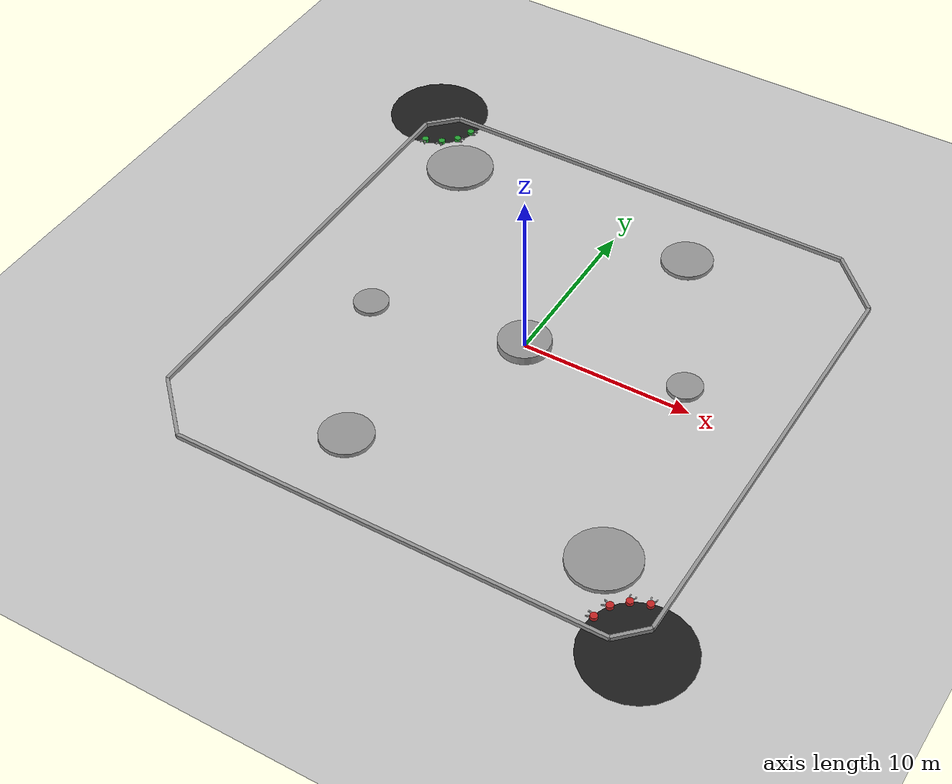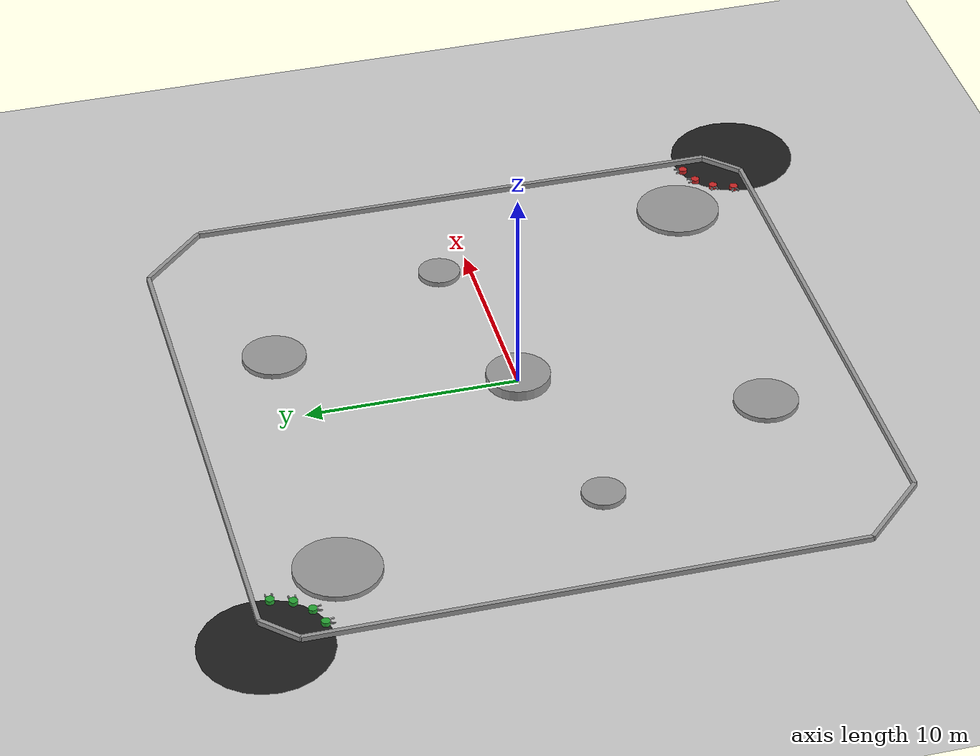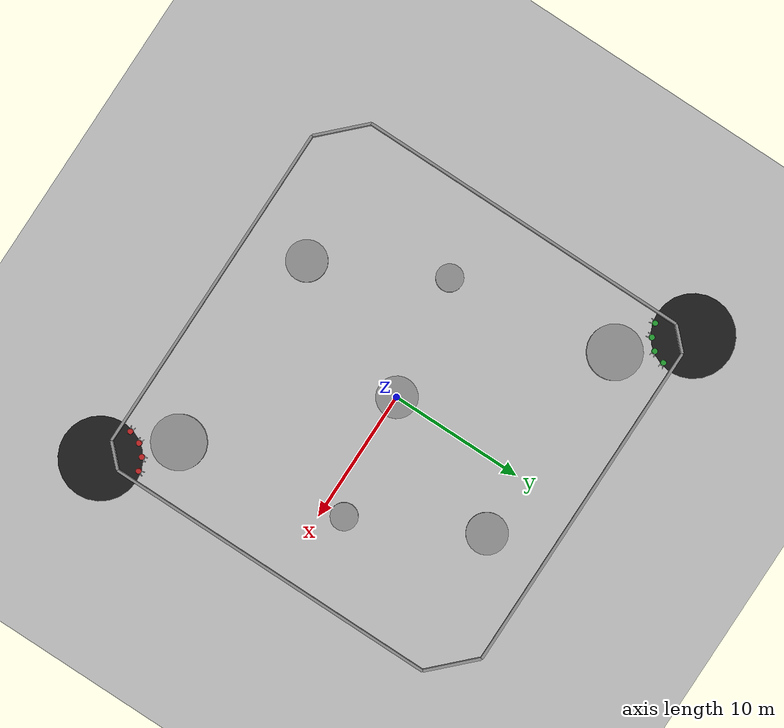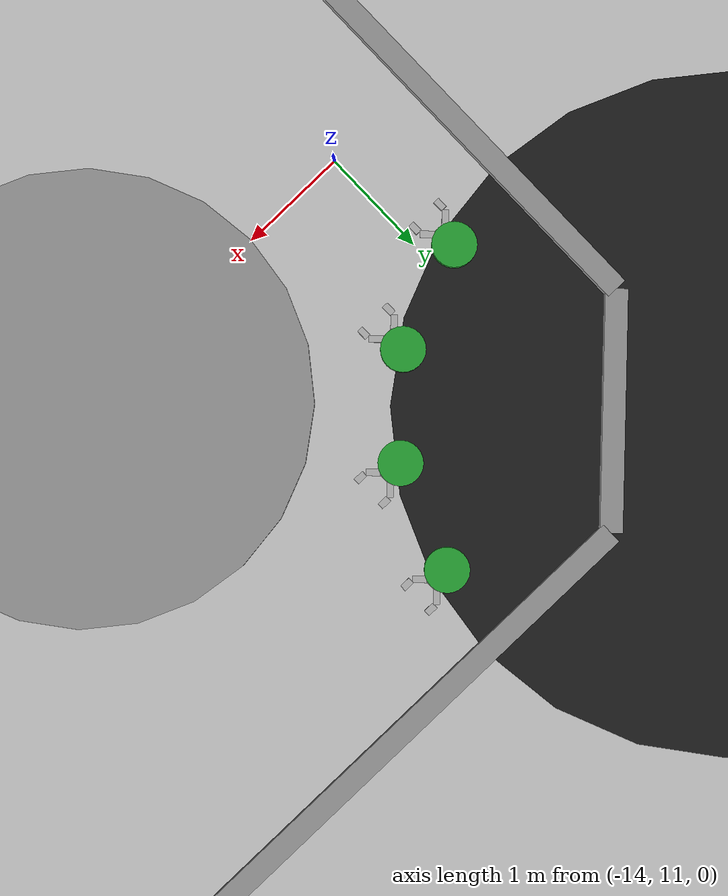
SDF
<?xml version="1.0"?>
<sdf version="1.4">
  <world name="default">
    <scene>
      <shadows>0</shadows>
      <grid>0</grid>
    </scene>
      <!-- World Camera -->
    <gui>
        <camera name='camera_view'>
        <pose>0 0 50 0 1.57079 1.57079</pose>
        </camera>
    </gui>

    <!-- Ground -->
    <include>
      <uri>model://ground_plane</uri>
    </include>

    <!-- Global light source -->
     <include>
      <uri>model://sun</uri>
    </include>

    <!-- Robots Team A-->
    <include>
      <pose>-14.25 12.25 0 0 0  -1.57079 </pose>
      <name>TeamA_Bug_01</name>
      <uri>model://SDIC_GreenBug</uri>
    </include>

    <include>
      <pose>-12.25 14.25 0 0 0 0</pose>
      <name>TeamA_Bug_02</name>
      <uri>model://SDIC_GreenBug</uri>
    </include>

    <include>
      <pose>-13.3 12.6 0 0 0 -1.57079</pose>
      <name>TeamA_Bug_03</name>
      <uri>model://SDIC_GreenBug</uri>
    </include>

    <include>
      <pose>-12.6 13.3 0 0 0 0</pose>
      <name>TeamA_Bug_04</name>
      <uri>model://SDIC_GreenBug</uri>
    </include>

    <!-- Robots Team B-->
    <include>
      <pose>14.25 -12.25 0 0 0  1.57079</pose>
      <name>TeamB_Bug_01</name>
      <uri>model://SDIC_RedBug</uri>
    </include>

    <include>
      <pose>12.25 -14.25 0 0 0 3.14159</pose>
      <name>TeamB_Bug_02</name>
      <uri>model://SDIC_RedBug</uri>
    </include>

    <include>
      <pose>13.3 -12.6 0 0 0 1.57079</pose>
      <name>TeamB_Bug_03</name>
      <uri>model://SDIC_RedBug</uri>
    </include>

    <include>
      <pose>12.6 -13.3 0 0 0 3.14159</pose>
      <name>TeamB_Bug_04</name>
      <uri>model://SDIC_RedBug</uri>
    </include>

    <!-- Wall -->
    <include>
        <uri>model://SDIC_WallHuge</uri>
    </include>

    <!-- Home_A -->
    <include>
      <pose>-15 15 0.001 0 0 0</pose>
      <name>Home_A</name>
      <uri>model://SDIC_Home</uri>
    </include>

  <!-- Home_B -->
    <include>
      <pose>15 -15 0.001 0 0 0</pose>
      <name>Home_B</name>
      <uri>model://SDIC_Home</uri>
    </include>

  </world>
</sdf>

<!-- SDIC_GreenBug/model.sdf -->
<sdf version='1.4'>
  <!-- Robot model -->
  <model name="SDIC_Bug">
    <!-- Body elements -->
    <link name='bug'>
      <pose>0 0 .1 0 0 0</pose>
      <inertial>
	<mass>5</mass>
	<inertia>
	  <ixx>1</ixx>
	  <ixy>0</ixy>
	  <ixz>0</ixz>
	  <iyy>1</iyy>
	  <iyz>0</iyz>
	  <izz>1</izz>
	</inertia>
      </inertial>
      <collision name='collision'>
	<geometry>
	  <cylinder>
	    <radius>.2</radius>
	    <length>.2</length>
	  </cylinder>
	</geometry>
	<surface>
	  <friction>
	    <ode>
	      <mu>0.1</mu>
	      <mu2>0</mu2>
	      <slip1>0.0</slip1>
	      <slip2>0.0</slip2>
	    </ode>
	  </friction>
	</surface>
      </collision>

      <visual name='visual'>
	<geometry>
	  <cylinder>
	    <radius>.2</radius>
	    <length>.2</length>
	  </cylinder>
	</geometry>
	<material>
	  <script>
	    <uri>file://media/materials/scripts/gazebo.material</uri>
	    <name>Gazebo/Green</name>
	  </script>
	</material>
      </visual>

      <!-- Sensors -->
      <!-- Proximity sensor -->
      <sensor name="laser" type="ray">
	<pose>0 0 0.075 0 0 0 </pose>
	<ray>
	<scan>
	  <horizontal>
	    <samples>32</samples>
	    <resolution>1</resolution>
	    <min_angle>-3</min_angle>
	    <max_angle>3</max_angle>
	  </horizontal>
	</scan>
	<range>
	  <min>0.201</min>
	  <max>2.0</max>
	  <resolution>0.01</resolution>
	</range>
	<noise>
	  <type>gaussian</type>
	  <mean>0.0</mean>
	  <stddev>0.02</stddev>
	</noise>
      </ray>
      <always_on>1</always_on>
      <update_rate>25</update_rate>
      <visualize>0</visualize>
      </sensor>

      <!-- Proximity sensor -->
      <sensor name="laser_target" type="ray">
	<pose>0 0 0.25 0 0 0 </pose>
	<ray>
	<scan>
	  <horizontal>
	    <samples>32</samples>
	    <resolution>1</resolution>
	    <min_angle>-3</min_angle>
	    <max_angle>3</max_angle>
	  </horizontal>
	</scan>
	<range>
	  <min>0.26</min>
	  <max>2.5</max>
	  <resolution>0.01</resolution>
	</range>
	<noise>
	  <type>gaussian</type>
	  <mean>0.0</mean>
	  <stddev>0.02</stddev>
	</noise>
      </ray>
      <always_on>1</always_on>
      <update_rate>25</update_rate>
      <visualize>0</visualize>
      </sensor>
      <!-- Proximity sensor Gripper -->
      <sensor name="laser_gripper" type="ray">
	<pose>0.19 0 -0.02 0 0 0 </pose>
	<ray>
	<scan>
	  <horizontal>
	    <samples>16</samples>
	    <resolution>1</resolution>
	    <min_angle>-1</min_angle>
	    <max_angle>1</max_angle>
	  </horizontal>
	</scan>
	<range>
	  <min>0.0155</min>
	  <max>0.2</max>
	  <resolution>0.01</resolution>
	</range>
	<noise>
	  <type>gaussian</type>
	  <mean>0.0</mean>
	  <stddev>0.005</stddev>
	</noise>
	</ray>
	<always_on>0</always_on>
	<update_rate>25</update_rate>
	<visualize>0</visualize>
      </sensor>

    <sensor name="camera" type="camera">
      <pose>0.125 0 0.25 0 0.57 0</pose>
      <camera>
	<horizontal_fov>1.0047</horizontal_fov>
          <image>
            <width>32</width>
            <height>28</height>
          </image>
          <clip>
            <near>0.15</near>
            <far>20</far>
          </clip>
	  <noise>
            <type>gaussian</type>
            <mean>0.0</mean>
            <stddev>0.001</stddev>
          </noise>
   </camera>
      <always_on>1</always_on>
      <update_rate>30</update_rate>
      <visualize>0</visualize>
    </sensor>
    </link>
`
    <include>
      <uri>model://SDIC_Gripper</uri>
      <pose>0.17 0 .08 0 0 0</pose>
    </include>

    <joint name="arm_gripper_joint" type="revolute">
      <parent>bug</parent>
      <child>SDIC_Gripper::palm</child>
      <axis>
	<limit>
	  <lower>0</lower>
	  <upper>0</upper>
	</limit>
	<xyz>0 0 1</xyz>
      </axis>
    </joint>

    <plugin name="model_push" filename="libvel_plugin.so" />
</model>
</sdf>

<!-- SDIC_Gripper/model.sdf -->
<sdf version="1.4">
  <model name="SDIC_Gripper">
    <link name="palm">
      <pose>0.0 0.0 0.05 0 0 0</pose>
      <inertial>
        <mass>0.002</mass>
      </inertial>
      <collision name="collision">
        <geometry>
          <box>
            <size>0.06 0.1 0.06</size>
          </box>
        </geometry>
        <surface>
	  <friction>
            <ode>
              <mu>0.1</mu>
              <mu2>0</mu2>
            </ode>
          </friction>
          <contact>
            <ode>
              <max_vel>0.0</max_vel>
            </ode>
          </contact>
        </surface>
      </collision>
      <visual name="visual">
        <geometry>
          <box>
            <size>0.06 0.1 0.06</size>
          </box>
        </geometry>
      </visual>
    </link>
    <link name="left_finger">
      <pose>0.05 0.1 0.05 0 0 -0.78539</pose>
      <inertial>
        <mass>0.001</mass>
	<inertia>
	  <ixx>0.001</ixx>
	  <ixy>0</ixy>
	  <ixz>0</ixz>
	  <iyy>0.001</iyy>
	  <iyz>0</iyz>
	  <izz>0.001</izz>
	</inertia>
      </inertial>
      <collision name="collision">
        <geometry>
          <box>
            <size>0.06 0.15 0.06</size>
          </box>
        </geometry>
        <surface>
          <friction>
            <ode>
              <mu>0.1</mu>
              <mu2>0</mu2>
            </ode>
          </friction>
          <contact>
            <ode>
              <max_vel>0.0</max_vel>
            </ode>
          </contact>
        </surface>
      </collision>
      <visual name="visual">
        <geometry>
          <box>
            <size>0.06 0.15 0.06</size>
          </box>
        </geometry>
      </visual>
    </link>
    <link name="left_finger_tip">
      <pose>0.168 0.15 0.05 0 0 1.5707</pose>
      <inertial>
        <mass>0.001</mass>
	<inertia>
	  <ixx>0.001</ixx>
	  <ixy>0</ixy>
	  <ixz>0</ixz>
	  <iyy>0.001</iyy>
	  <iyz>0</iyz>
	  <izz>0.001</izz>
	</inertia>
      </inertial>
      <collision name="collision">
        <geometry>
          <box>
            <size>0.06 0.1 0.06</size>
          </box>
        </geometry>
        <surface>
          <friction>
            <ode>
              <mu>0.1</mu>
              <mu2>0</mu2>
            </ode>
          </friction>
          <contact>
            <ode>
              <max_vel>0.0</max_vel>
            </ode>
          </contact>
        </surface>
      </collision>
      <visual name="visual">
        <geometry>
          <box>
            <size>0.06 0.1 0.06</size>
          </box>
        </geometry>
      </visual>
    </link>
    <link name="right_finger">
      <pose>0.05 -0.1 0.05 0 0 .78539</pose>
      <inertial>
        <mass>0.001</mass>
	<inertia>
	  <ixx>0.001</ixx>
	  <ixy>0</ixy>
	  <ixz>0</ixz>
	  <iyy>0.001</iyy>
	  <iyz>0</iyz>
	  <izz>0.001</izz>
	</inertia>
      </inertial>
      <collision name="collision">
        <geometry>
          <box>
            <size>0.06 0.15 0.06</size>
          </box>
        </geometry>
        <surface>
          <friction>
            <ode>
              <mu>0.1</mu>
              <mu2>0</mu2>
            </ode>
          </friction>
          <contact>
            <ode>
              <max_vel>0.0</max_vel>
            </ode>
          </contact>
        </surface>
      </collision>
      <visual name="visual">
        <geometry>
          <box>
            <size>0.06 0.15 0.06</size>
          </box>
        </geometry>
      </visual>
    </link>
    <link name="right_finger_tip">
      <pose>0.168 -0.15 0.05 0 0 1.5707</pose>
      <inertial>
        <mass>0.001</mass>
	<inertia>
	  <ixx>0.001</ixx>
	  <ixy>0</ixy>
	  <ixz>0</ixz>
	  <iyy>0.001</iyy>
	  <iyz>0</iyz>
	  <izz>0.001</izz>
	</inertia>
      </inertial>
      <collision name="collision">
        <geometry>
          <box>
            <size>0.06 0.1 0.06</size>
          </box>
        </geometry>
        <surface>
          <friction>
            <ode>
              <mu>0.1</mu>
              <mu2>0</mu2>
            </ode>
          </friction>
          <contact>
            <ode>
              <max_vel>0.0</max_vel>
            </ode>
          </contact>
        </surface>
      </collision>
      <visual name="visual">
        <geometry>
          <box>
            <size>0.06 0.1 0.06</size>
          </box>
        </geometry>
      </visual>
    </link>

    <joint name="left_finger" type="revolute">
      <pose>0 -0.075 0 0 0 0</pose>
      <child>left_finger</child>
      <parent>palm</parent>
      <axis>
        <limit><lower>-0.2</lower><upper>0.4</upper></limit>
        <xyz>0 0 -1</xyz>
      </axis>
    </joint>
    <joint name="left_finger_tip" type="revolute">
      <pose>0 0.05 0 0 0 0</pose>
      <child>left_finger_tip</child>
      <parent>left_finger</parent>
      <axis>
        <limit><lower>0</lower><upper>0.4</upper></limit>
        <xyz>0 0 -1</xyz>
      </axis>
    </joint>
    <joint name="right_finger" type="revolute">
      <pose>0 0.075 0 0 0 0</pose>
      <child>right_finger</child>
      <parent>palm</parent>
      <axis>
        <limit><lower>-0.2</lower><upper>0.4</upper></limit>
        <xyz>0 0 1</xyz>
      </axis>
    </joint>
    <joint name="right_finger_tip" type="revolute">
      <pose>0 0.05 0 0 0 0</pose>
      <child>right_finger_tip</child>
      <parent>right_finger</parent>
      <axis>
        <limit><lower>0</lower><upper>0.4</upper></limit>
        <xyz>0 0 1</xyz>
      </axis>
    </joint>

  </model>
</sdf>

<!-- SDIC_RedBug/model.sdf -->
<sdf version='1.4'>
  <!-- Robot model -->
  <model name="SDIC_Bug">
    <!-- Body elements -->
    <link name='bug'>
      <pose>0 0 .1 0 0 0</pose>
      <inertial>
	<mass>5</mass>
	<inertia>
	  <ixx>1</ixx>
	  <ixy>0</ixy>
	  <ixz>0</ixz>
	  <iyy>1</iyy>
	  <iyz>0</iyz>
	  <izz>1</izz>
	</inertia>
      </inertial>
      <collision name='collision'>
	<geometry>
	  <cylinder>
	    <radius>.2</radius>
	    <length>.2</length>
	  </cylinder>
	</geometry>
	<surface>
	  <friction>
	    <ode>
	      <mu>0.1</mu>
	      <mu2>0</mu2>
	      <slip1>0.0</slip1>
	      <slip2>0.0</slip2>
	    </ode>
	  </friction>
	</surface>
      </collision>

      <visual name='visual'>
	<geometry>
	  <cylinder>
	    <radius>.2</radius>
	    <length>.2</length>
	  </cylinder>
	</geometry>
	<material>
	  <script>
	    <uri>file://media/materials/scripts/gazebo.material</uri>
	    <name>Gazebo/Red</name>
	  </script>
	</material>
      </visual>

      <!-- Sensors -->
      <!-- Proximity sensor -->
      <sensor name="laser" type="ray">
	<pose>0 0 0.075 0 0 0 </pose>
	<ray>
	<scan>
	  <horizontal>
	    <samples>32</samples>
	    <resolution>1</resolution>
	    <min_angle>-3</min_angle>
	    <max_angle>3</max_angle>
	  </horizontal>
	</scan>
	<range>
	  <min>0.201</min>
	  <max>2.0</max>
	  <resolution>0.01</resolution>
	</range>
	<noise>
	  <type>gaussian</type>
	  <mean>0.0</mean>
	  <stddev>0.02</stddev>
	</noise>
      </ray>
      <always_on>1</always_on>
      <update_rate>25</update_rate>
      <visualize>0</visualize>
      </sensor>

      <!-- Proximity sensor -->
      <sensor name="laser_target" type="ray">
	<pose>0 0 0.25 0 0 0 </pose>
	<ray>
	<scan>
	  <horizontal>
	    <samples>32</samples>
	    <resolution>1</resolution>
	    <min_angle>-3</min_angle>
	    <max_angle>3</max_angle>
	  </horizontal>
	</scan>
	<range>
	  <min>0.26</min>
	  <max>2.5</max>
	  <resolution>0.01</resolution>
	</range>
	<noise>
	  <type>gaussian</type>
	  <mean>0.0</mean>
	  <stddev>0.02</stddev>
	</noise>
      </ray>
      <always_on>1</always_on>
      <update_rate>25</update_rate>
      <visualize>0</visualize>
      </sensor>
      <!-- Proximity sensor Gripper -->
      <sensor name="laser_gripper" type="ray">
	<pose>0.19 0 -0.02 0 0 0 </pose>
	<ray>
	<scan>
	  <horizontal>
	    <samples>16</samples>
	    <resolution>1</resolution>
	    <min_angle>-1</min_angle>
	    <max_angle>1</max_angle>
	  </horizontal>
	</scan>
	<range>
	  <min>0.0155</min>
	  <max>0.2</max>
	  <resolution>0.01</resolution>
	</range>
	<noise>
	  <type>gaussian</type>
	  <mean>0.0</mean>
	  <stddev>0.005</stddev>
	</noise>
	</ray>
	<always_on>0</always_on>
	<update_rate>25</update_rate>
	<visualize>0</visualize>
      </sensor>

    <sensor name="camera" type="camera">
      <pose>0.125 0 0.25 0 0.57 0</pose>
      <camera>
	<horizontal_fov>1.0047</horizontal_fov>
          <image>
            <width>32</width>
            <height>28</height>
          </image>
          <clip>
            <near>0.15</near>
            <far>20</far>
          </clip>
	  <noise>
            <type>gaussian</type>
            <mean>0.0</mean>
            <stddev>0.001</stddev>
          </noise>
   </camera>
      <always_on>1</always_on>
      <update_rate>30</update_rate>
      <visualize>0</visualize>
    </sensor>
    </link>
`
    <include>
      <uri>model://SDIC_Gripper</uri>
      <pose>0.17 0 .08 0 0 0</pose>
    </include>

    <joint name="arm_gripper_joint" type="revolute">
      <parent>bug</parent>
      <child>SDIC_Gripper::palm</child>
      <axis>
	<limit>
	  <lower>0</lower>
	  <upper>0</upper>
	</limit>
	<xyz>0 0 1</xyz>
      </axis>
    </joint>

    <plugin name="model_push" filename="libvel_plugin.so" />
</model>
</sdf>

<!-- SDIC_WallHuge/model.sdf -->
<sdf version='1.4'>
  <model name='Wall'>
    <link name='Wall_1'>
      <collision name='Wall_1_Collision'>
        <geometry>
          <box>
            <size>25.5 0.2 0.25</size>
          </box>
        </geometry>
        <pose>0 0 0.125 0 -0 0</pose>
      </collision>
      <visual name='Wall_1_Visual'>
        <pose>0 0 0.125 0 -0 0</pose>
        <geometry>
          <box>
            <size>25.5 0.2 0.25</size>
          </box>
        </geometry>
        <material>
          <script>
            <uri>file://media/materials/scripts/gazebo.material</uri>
            <name>Gazebo/Grey</name>
          </script>
        </material>
      </visual>
      <velocity_decay>
        <linear>0</linear>
        <angular>0</angular>
      </velocity_decay>
      <pose>-15 0.75 0 0 0 -1.5708</pose>
    </link>

    <link name='Wall_2'>
      <collision name='Wall_2_Collision'>
        <geometry>
          <box>
            <size>25.5 0.2 0.25</size>
          </box>
        </geometry>
        <pose>0 0 0.125 0 -0 0</pose>
      </collision>
      <visual name='Wall_2_Visual'>
        <pose>0 0 0.125 0 -0 0</pose>
        <geometry>
          <box>
            <size>25.5 0.2 0.25</size>
          </box>
         </geometry>
        <material>
          <script>
            <uri>file://media/materials/scripts/gazebo.material</uri>
            <name>Gazebo/Grey</name>
          </script>
        </material>
      </visual>
      <velocity_decay>
        <linear>0</linear>
        <angular>0</angular>
      </velocity_decay>
      <pose>0.75 -15 0 0 0 0</pose>
    </link>

 <link name='Wall_3'>
      <collision name='Wall_3_Collision'>
        <geometry>
          <box>
            <size>25.5 0.2 0.25</size>
          </box>
        </geometry>
        <pose>0 0 0.125 0 -0 0</pose>
      </collision>
      <visual name='Wall_3_Visual'>
        <pose>0 0 0.125 0 -0 0</pose>
        <geometry>
          <box>
            <size>25.5 0.2 0.25</size>
          </box>
        </geometry>
        <material>
          <script>
            <uri>file://media/materials/scripts/gazebo.material</uri>
            <name>Gazebo/Grey</name>
          </script>
        </material>
      </visual>
      <velocity_decay>
        <linear>0</linear>
        <angular>0</angular>
      </velocity_decay>
      <pose>15 -0.75 0 0 0 -1.5708</pose>
    </link>

    <link name='Wall_4'>
      <collision name='Wall_4_Collision'>
        <geometry>
          <box>
            <size>25.5 0.2 0.25</size>
          </box>
        </geometry>
        <pose>0 0 0.125 0 -0 0</pose>
      </collision>
      <visual name='Wall_4_Visual'>
        <pose>0 0 0.125 0 -0 0</pose>
        <geometry>
          <box>
            <size>25.5 0.2 0.25</size>
          </box>
        </geometry>
        <material>
          <script>
            <uri>file://media/materials/scripts/gazebo.material</uri>
            <name>Gazebo/Grey</name>
          </script>
        </material>
      </visual>
      <velocity_decay>
        <linear>0</linear>
        <angular>0</angular>
      </velocity_decay>
      <pose>-0.75 15 0 0 0 0</pose>
    </link>

    <link name='Wall_5'>
      <collision name='Wall_5_Collision'>
        <geometry>
          <box>
            <size> 4.2426405 0.2 0.25</size>
          </box>
        </geometry>
        <pose>0 0 0.125 0 -0 0</pose>
      </collision>
      <visual name='Wall_5_Visual'>
        <pose>0 0 0.125 0 -0 0</pose>
        <geometry>
          <box>
            <size>4.2426405 0.2 0.25</size>
          </box>
        </geometry>
        <material>
          <script>
            <uri>file://media/materials/scripts/gazebo.material</uri>
            <name>Gazebo/Grey</name>
          </script>
        </material>
      </visual>
      <velocity_decay>
        <linear>0</linear>
        <angular>0</angular>
      </velocity_decay>
      <pose>13.5 13.5 0 0 0 -0.78539</pose>
    </link>

    <link name='Wall_6'>
      <collision name='Wall_6_Collision'>
        <geometry>
          <box>
            <size> 4.2426405 0.2 0.25</size>
          </box>
        </geometry>
        <pose>0 0 0.125 0 -0 0</pose>
      </collision>
      <visual name='Wall_6_Visual'>
        <pose>0 0 0.125 0 -0 0</pose>
        <geometry>
          <box>
            <size>4.2426405 0.2 0.25</size>
          </box>
        </geometry>
        <material>
          <script>
            <uri>file://media/materials/scripts/gazebo.material</uri>
            <name>Gazebo/Grey</name>
          </script>
        </material>
      </visual>
      <velocity_decay>
        <linear>0</linear>
        <angular>0</angular>
      </velocity_decay>
      <pose>-13.5 -13.5 0 0 0 -0.78539</pose>
    </link>

    <link name='Wall_7'>
      <collision name='Wall_7_Collision'>
        <geometry>
          <box>
            <size> 2.1213225 0.2 0.25</size>
          </box>
        </geometry>
        <pose>0 0 0.125 0 -0 0</pose>
      </collision>
      <visual name='Wall_7_Visual'>
        <pose>0 0 0.125 0 -0 0</pose>
        <geometry>
          <box>
            <size> 2.1213225 0.2 0.25</size>
          </box>
        </geometry>
        <material>
          <script>
            <uri>file://media/materials/scripts/gazebo.material</uri>
            <name>Gazebo/Grey</name>
          </script>
        </material>
      </visual>
      <velocity_decay>
        <linear>0</linear>
        <angular>0</angular>
      </velocity_decay>
      <pose>-14.25 14.25 0 0 0 0.78539</pose>
    </link>

    <link name='Wall_8'>
      <collision name='Wall_8_Collision'>
        <geometry>
          <box>
            <size>  2.1213225 0.2 0.25</size>
          </box>
        </geometry>
        <pose>0 0 0.125 0 -0 0</pose>
      </collision>
      <visual name='Wall_7_Visual'>
        <pose>0 0 0.125 0 -0 0</pose>
        <geometry>
          <box>
            <size> 2.1213225 0.2 0.25</size>
          </box>
        </geometry>
        <material>
          <script>
            <uri>file://media/materials/scripts/gazebo.material</uri>
            <name>Gazebo/Grey</name>
          </script>
        </material>
      </visual>
      <velocity_decay>
        <linear>0</linear>
        <angular>0</angular>
      </velocity_decay>
      <pose> 14.25 -14.25 0 0 0 0.78539</pose>
    </link>

    <link name='Obstacle_0'>
      <collision name='Obstacle_0_Collision'>
        <geometry>
          <cylinder>
            <radius> 1.5 </radius>
	    <length> .5 </length>
          </cylinder>
        </geometry>
        <pose>0 0 0.25 0 -0 0</pose>
      </collision>
      <visual name='Obstacle_0_Visual'>
        <pose>0 0 0.25 0 -0 0</pose>
        <geometry>
         <cylinder>
            <radius> 1.5 </radius>
	    <length> .5 </length>
          </cylinder>
	</geometry>
        <material>
          <script>
            <uri>file://media/materials/scripts/gazebo.material</uri>
            <name>Gazebo/Grey</name>
          </script>
        </material>
      </visual>
      <velocity_decay>
        <linear>0</linear>
        <angular>0</angular>
      </velocity_decay>
      <pose>0 0 0 0 0 0</pose>
    </link>

 <link name='Obstacle_1'>
      <collision name='Obstacle_1_Collision'>
        <geometry>
          <cylinder>
            <radius> 2 </radius>
	    <length> 0.25 </length>
          </cylinder>
        </geometry>
        <pose>0 0 0.125 0 -0 0</pose>
      </collision>
      <visual name='Obstacle_1_Visual'>
        <pose>0 0 0.125 0 -0 0</pose>
        <geometry>
         <cylinder>
            <radius> 2 </radius>
	    <length> 0.25 </length>
          </cylinder>
	</geometry>
        <material>
          <script>
            <uri>file://media/materials/scripts/gazebo.material</uri>
            <name>Gazebo/Grey</name>
          </script>
        </material>
      </visual>
      <velocity_decay>
        <linear>0</linear>
        <angular>0</angular>
      </velocity_decay>
      <pose> 11 -11 0 0 0 0</pose>
    </link>
   <link name='Obstacle_2'>
      <collision name='Obstacle_2_Collision'>
        <geometry>
          <cylinder>
            <radius> 2 </radius>
	    <length> 0.25 </length>
          </cylinder>
        </geometry>
        <pose>0 0 0.125 0 -0 0</pose>
      </collision>
      <visual name='Obstacle_2_Visual'>
        <pose>0 0 0.125 0 -0 0</pose>
        <geometry>
         <cylinder>
            <radius> 2 </radius>
	    <length> 0.25 </length>
          </cylinder>
	</geometry>
        <material>
          <script>
            <uri>file://media/materials/scripts/gazebo.material</uri>
            <name>Gazebo/Grey</name>
          </script>
        </material>
      </visual>
      <velocity_decay>
        <linear>0</linear>
        <angular>0</angular>
      </velocity_decay>
      <pose> -11 11 0 0 0 0</pose>
    </link>

    <link name='Obstacle_3'>
      <collision name='Obstacle_3_Collision'>
        <geometry>
          <cylinder>
            <radius> 1.5 </radius>
	    <length> 0.25 </length>
          </cylinder>
        </geometry>
        <pose>0 0 0.125 0 -0 0</pose>
      </collision>
      <visual name='Obstacle_3_Visual'>
        <pose>0 0 0.125 0 -0 0</pose>
        <geometry>
         <cylinder>
            <radius> 1.5 </radius>
	    <length> 0.25 </length>
          </cylinder>
	</geometry>
        <material>
          <script>
            <uri>file://media/materials/scripts/gazebo.material</uri>
            <name>Gazebo/Grey</name>
          </script>
        </material>
      </visual>
      <velocity_decay>
        <linear>0</linear>
        <angular>0</angular>
      </velocity_decay>
      <pose> 4.5 10.5 0 0 0 0</pose>
    </link>

 <link name='Obstacle_4'>
      <collision name='Obstacle_4_Collision'>
        <geometry>
          <cylinder>
            <radius> 1.5 </radius>
	    <length> 0.25 </length>
          </cylinder>
        </geometry>
        <pose>0 0 0.125 0 -0 0</pose>
      </collision>
      <visual name='Obstacle_4_Visual'>
        <pose>0 0 0.125 0 -0 0</pose>
        <geometry>
         <cylinder>
            <radius> 1.5 </radius>
	    <length> 0.25 </length>
          </cylinder>
	</geometry>
        <material>
          <script>
            <uri>file://media/materials/scripts/gazebo.material</uri>
            <name>Gazebo/Grey</name>
          </script>
        </material>
      </visual>
      <velocity_decay>
        <linear>0</linear>
        <angular>0</angular>
      </velocity_decay>
      <pose> -4.5 -10.5 0 0 0 0</pose>
    </link>

    <link name='Obstacle_5'>
      <collision name='Obstacle_5_Collision'>
        <geometry>
          <cylinder>
            <radius> 1 </radius>
	    <length> 0.25 </length>
          </cylinder>
        </geometry>
        <pose>0 0 0.125 0 -0 0</pose>
      </collision>
      <visual name='Obstacle_5_Visual'>
        <pose>0 0 0.125 0 -0 0</pose>
        <geometry>
         <cylinder>
            <radius> 1 </radius>
	    <length> 0.25 </length>
          </cylinder>
	</geometry>
        <material>
          <script>
            <uri>file://media/materials/scripts/gazebo.material</uri>
            <name>Gazebo/Grey</name>
          </script>
        </material>
      </visual>
      <velocity_decay>
        <linear>0</linear>
        <angular>0</angular>
      </velocity_decay>
      <pose> 9 1.5 0 0 0 0</pose>
    </link>

 <link name='Obstacle_6'>
      <collision name='Obstacle_6_Collision'>
        <geometry>
          <cylinder>
            <radius> 1 </radius>
	    <length> 0.25 </length>
          </cylinder>
        </geometry>
        <pose>0 0 0.125 0 -0 0</pose>
      </collision>
      <visual name='Obstacle_6_Visual'>
        <pose>0 0 0.125 0 -0 0</pose>
        <geometry>
         <cylinder>
            <radius> 1 </radius>
	    <length> 0.25 </length>
          </cylinder>
	</geometry>
        <material>
          <script>
            <uri>file://media/materials/scripts/gazebo.material</uri>
            <name>Gazebo/Grey</name>
          </script>
        </material>
      </visual>
      <velocity_decay>
        <linear>0</linear>
        <angular>0</angular>
      </velocity_decay>
      <pose> -9 -1.5 0 0 0 0</pose>
    </link>

    <static>1</static>
  </model>
</sdf>

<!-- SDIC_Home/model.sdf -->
<sdf version='1.4'>
  <model name='Home'>
    <pose>0 0 0 0 0 0</pose>
    <link name='link'>
      <visual name='visual'>
        <pose>0 0 0.002 0 0 0</pose>
        <geometry>
         <cylinder>
            <radius> 3 </radius>
	    <length> 0.0001 </length>
          </cylinder>
        </geometry>
        <material>
          <script>
            <uri>file://media/materials/scripts/gazebo.material</uri>
	    <name>Gazebo/Black</name>
          </script>
        </material>
      </visual>
      <velocity_decay>
        <linear>0</linear>
        <angular>0</angular>
      </velocity_decay>
    </link>
    <static>1</static>
  </model>
</sdf>
